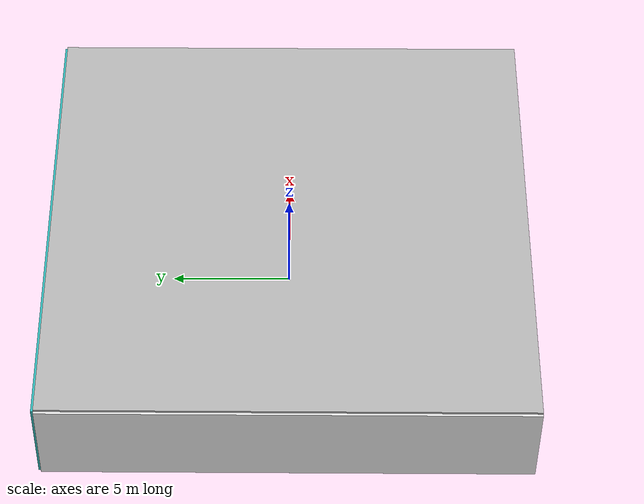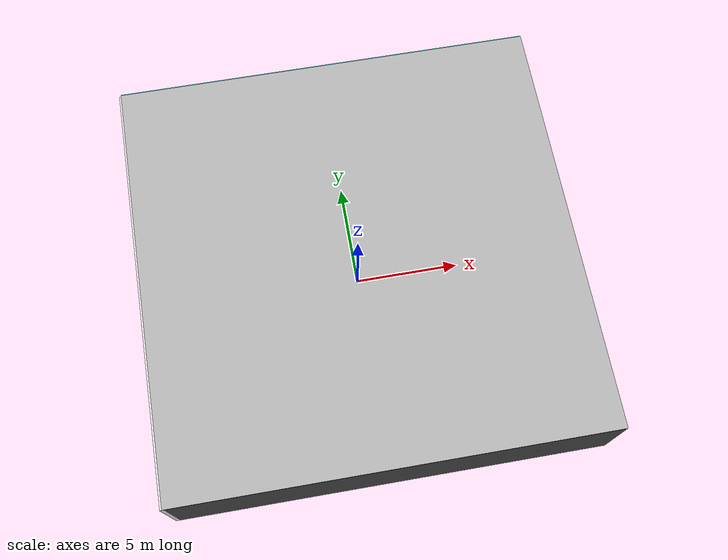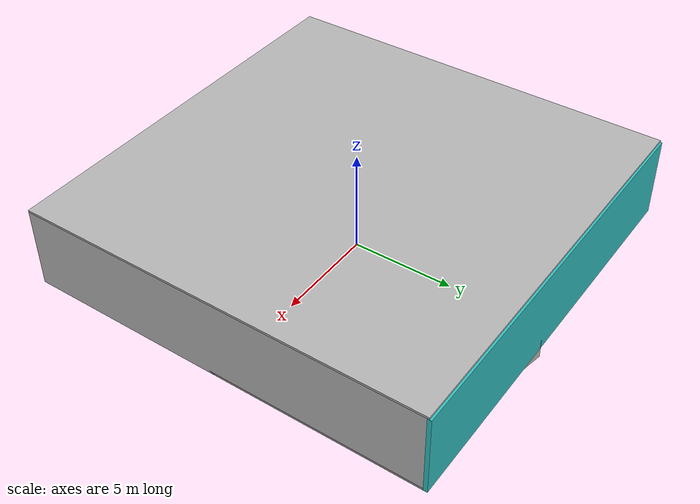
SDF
<sdf version="1.4">
 <world name="default">
  <physics type="ode">
   <max_step_size>0.001</max_step_size>
   <real_time_factor>1</real_time_factor>
   <real_time_update_rate>1000</real_time_update_rate>
   <gravity>0 0 -9.8</gravity>
  </physics>
  <scene><ambient>0.4 0.4 0.4 1</ambient><background>0.7 0.7 0.7 1</background><shadows>1</shadows></scene>
  <model name="Surrounding">
   <static>1</static>
   <link name="Ceiling">
    <collision name="Ceiling_Collision"><geometry><box><size>20 20 0.1</size></box></geometry></collision>
    <visual name="Ceiling_Visual">
     <geometry><box><size>20 20 0.1</size></box></geometry>
     <material>
      <script><uri>file://media/materials/scripts/gazebo.material</uri><name>Gazebo/Pioneer2Body</name></script>
     </material>
    </visual>
    <pose>0 0 4.05 0 0 0</pose>
   </link>
   <link name="Wall_South">
    <collision name="Wall_South_Collision">
     <geometry><box><size>20 0 4</size></box></geometry>
     <pose>0 0 2 0 -0 0</pose>
    </collision>
    <visual name="Wall_South_Visual">
     <pose>0 0 2 0 -0 0</pose>
     <geometry><box><size>20 0 4</size></box></geometry>
     <material>
      <script><uri>file://media/materials/scripts/gazebo.material</uri><name>Gazebo/Road</name></script>
     </material>
    </visual>
    <velocity_decay><linear>0</linear><angular>0</angular></velocity_decay>
    <pose>0 -10 0 0 -0 0</pose>
   </link>
   <link name="Wall_East">
    <collision name="Wall_21_Collision">
     <geometry><box><size>20 0 4</size></box></geometry>
     <pose>0 0 2 0 -0 0</pose>
    </collision>
    <visual name="Wall_21_Visual">
     <pose>0 0 2 0 -0 0</pose>
     <geometry><box><size>20 0 4</size></box></geometry>
     <material>
      <script><uri>file://media/materials/scripts/gazebo.material</uri><name>Gazebo/Pioneer2Body</name></script>
     </material>
    </visual>
    <velocity_decay><linear>0</linear><angular>0</angular></velocity_decay>
    <pose>10 0 0 0 -0 1.5708</pose>
   </link>
   <link name="Wall_North">
    <collision name="Wall_22_Collision">
     <geometry><box><size>20 0.2 4</size></box></geometry>
     <pose>0 0 2 0 -0 0</pose>
    </collision>
    <visual name="Wall_22_Visual">
     <pose>0 0 2 0 -0 0</pose>
     <geometry><box><size>20 0.2 4</size></box></geometry>
     <material>
      <script><uri>file://media/materials/scripts/gazebo.material</uri><name>Gazebo/Turquoise</name></script>
     </material>
    </visual>
    <velocity_decay><linear>0</linear><angular>0</angular></velocity_decay>
    <pose>0 10 0 0 -0 0</pose>
   </link>
   <link name="Wall_West">
    <collision name="Wall_23_Collision">
     <geometry><box><size>20 0.2 4</size></box></geometry>
     <pose>0 0 2 0 -0 0</pose>
    </collision>
    <visual name="Wall_23_Visual">
     <pose>0 0 2 0 -0 0</pose>
     <geometry><box><size>20 0.2 4</size></box></geometry>
     <material>
      <script><uri>file://media/materials/scripts/gazebo.material</uri><name>Gazebo/WhiteGlow</name></script>
     </material>
    </visual>
    <velocity_decay><linear>0</linear><angular>0</angular></velocity_decay>
    <pose>-10 0 0 0 0 -1.5708</pose>
   </link>
   <link name="Ground_link">
    <collision name="collision">
     <pose>0 0 .05 0 -0 0</pose>
     <geometry><box><size>20 20 0.1</size></box></geometry>
    </collision>
    <visual name="visual">
     <pose>0 0 .05 0 -0 0</pose>
     <geometry><box><size>20 20 0.1</size></box></geometry>
     <material>
      <script><uri>file://media/materials/scripts/gazebo.material</uri><name>Gazebo/Grey</name></script>
     </material>
    </visual>
   </link>
   <static>1</static>
  </model>
  <spherical_coordinates>
   <surface_model>EARTH_WGS84</surface_model>
   <latitude_deg>0</latitude_deg>
   <longitude_deg>0</longitude_deg>
   <elevation>0</elevation>
   <heading_deg>0</heading_deg>
  </spherical_coordinates>
  <light name="lightball_0" type="diffuse">
   <diffuse>0.8 0.8 0.8 1</diffuse>
   <specular>0.2 0.2 0.2 1</specular>
   <attenuation>
    <range>100</range>
    <constant>0.7</constant>
    <linear>0.01</linear>
    <quadratic>0.001</quadratic>
   </attenuation>
   <direction>-0.5 0.1 -0.9</direction>
   <pose>4.22511448391 8.55926868154 2.42762666274 0 0 0</pose>
  </light>
  <light name="lightball_1" type="diffuse">
   <diffuse>0.8 0.8 0.8 1</diffuse>
   <specular>0.2 0.2 0.2 1</specular>
   <attenuation>
    <range>100</range>
    <constant>0.7</constant>
    <linear>0.01</linear>
    <quadratic>0.001</quadratic>
   </attenuation>
   <direction>-0.5 0.1 -0.9</direction>
   <pose>9.94753092342 -5.51290059315 2.55335360298 0 0 0</pose>
  </light>
  <light name="lightball_2" type="diffuse">
   <diffuse>0.8 0.8 0.8 1</diffuse>
   <specular>0.2 0.2 0.2 1</specular>
   <attenuation>
    <range>100</range>
    <constant>0.7</constant>
    <linear>0.01</linear>
    <quadratic>0.001</quadratic>
   </attenuation>
   <direction>-0.5 0.1 -0.9</direction>
   <pose>-1.16535531203 2.77185200105 3.64346628298 0 0 0</pose>
  </light>
  <light name="lightball_3" type="diffuse">
   <diffuse>0.8 0.8 0.8 1</diffuse>
   <specular>0.2 0.2 0.2 1</specular>
   <attenuation>
    <range>100</range>
    <constant>0.7</constant>
    <linear>0.01</linear>
    <quadratic>0.001</quadratic>
   </attenuation>
   <direction>-0.5 0.1 -0.9</direction>
   <pose>1.13679593424 7.84565487908 2.61910717188 0 0 0</pose>
  </light>
  <light name="lightball_4" type="diffuse">
   <diffuse>0.8 0.8 0.8 1</diffuse>
   <specular>0.2 0.2 0.2 1</specular>
   <attenuation>
    <range>100</range>
    <constant>0.7</constant>
    <linear>0.01</linear>
    <quadratic>0.001</quadratic>
   </attenuation>
   <direction>-0.5 0.1 -0.9</direction>
   <pose>-1.30066378209 -9.51337207702 3.45439849851 0 0 0</pose>
  </light>
  <light name="lightball_5" type="diffuse">
   <diffuse>0.8 0.8 0.8 1</diffuse>
   <specular>0.2 0.2 0.2 1</specular>
   <attenuation>
    <range>100</range>
    <constant>0.7</constant>
    <linear>0.01</linear>
    <quadratic>0.001</quadratic>
   </attenuation>
   <direction>-0.5 0.1 -0.9</direction>
   <pose>5.08637564801 9.60011267182 3.39333390427 0 0 0</pose>
  </light>
  <light name="lightball_6" type="diffuse">
   <diffuse>0.8 0.8 0.8 1</diffuse>
   <specular>0.2 0.2 0.2 1</specular>
   <attenuation>
    <range>100</range>
    <constant>0.7</constant>
    <linear>0.01</linear>
    <quadratic>0.001</quadratic>
   </attenuation>
   <direction>-0.5 0.1 -0.9</direction>
   <pose>-9.89178058105 -3.02259403519 3.4089567364 0 0 0</pose>
  </light>
  <light name="lightball_7" type="diffuse">
   <diffuse>0.8 0.8 0.8 1</diffuse>
   <specular>0.2 0.2 0.2 1</specular>
   <attenuation>
    <range>100</range>
    <constant>0.7</constant>
    <linear>0.01</linear>
    <quadratic>0.001</quadratic>
   </attenuation>
   <direction>-0.5 0.1 -0.9</direction>
   <pose>-1.131127053 -3.55734281498 1.62406970538 0 0 0</pose>
  </light>
  <light name="lightball_8" type="diffuse">
   <diffuse>0.8 0.8 0.8 1</diffuse>
   <specular>0.2 0.2 0.2 1</specular>
   <attenuation>
    <range>100</range>
    <constant>0.7</constant>
    <linear>0.01</linear>
    <quadratic>0.001</quadratic>
   </attenuation>
   <direction>-0.5 0.1 -0.9</direction>
   <pose>4.96808999384 4.53072186598 2.69979798173 0 0 0</pose>
  </light>
  <light name="lightball_9" type="diffuse">
   <diffuse>0.8 0.8 0.8 1</diffuse>
   <specular>0.2 0.2 0.2 1</specular>
   <attenuation>
    <range>100</range>
    <constant>0.7</constant>
    <linear>0.01</linear>
    <quadratic>0.001</quadratic>
   </attenuation>
   <direction>-0.5 0.1 -0.9</direction>
   <pose>3.79663634749 -8.31382414956 0.834855543376 0 0 0</pose>
  </light>
  <light name="lightball_10" type="diffuse">
   <diffuse>0.8 0.8 0.8 1</diffuse>
   <specular>0.2 0.2 0.2 1</specular>
   <attenuation>
    <range>100</range>
    <constant>0.7</constant>
    <linear>0.01</linear>
    <quadratic>0.001</quadratic>
   </attenuation>
   <direction>-0.5 0.1 -0.9</direction>
   <pose>-1.42628294824 7.03139882139 0.620989388983 0 0 0</pose>
  </light>
  <include><uri>model://cabinet</uri><pose>-5.48659508398 -4.42137532636 0 0 0 0.444681580817</pose></include>
  <include>
   <uri>model://construction_cone</uri>
   <pose>-2.19277264275 -8.29871974776 0 0 0 2.43350179399</pose>
  </include>
  <include>
   <uri>model://textured_shapes</uri>
   <pose>1.19396316058 8.04979726508 0 0 0 2.94919140036</pose>
  </include>
  <include><uri>model://table</uri><pose>5.45663948596 -4.24113741491 0 0 0 2.99525645622</pose></include>
  <include>
   <uri>model://robocup_3Dsim_goal</uri>
   <pose>5.15203409054 6.74588750049 0 0 0 2.29746708482</pose>
  </include>
 </world>
</sdf>

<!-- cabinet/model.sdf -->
<sdf version="1.5">
  <model name="cabinet">
    <static>true</static>
    <link name="cabinet_bottom_plate">
      <inertial>
        <pose>0 0 -1 0 0 0</pose>
        <inertia>
          <ixx>2.050000</ixx>
          <ixy>0</ixy>
          <ixz>0</ixz>
          <iyy>2.050000</iyy>
          <iyz>0</iyz>
          <izz>2.050000</izz>
        </inertia>
        <mass>25.000000</mass>
      </inertial>
      <collision name="cabinet_bottom_plate_geom">
        <pose>0 0 0.010000 0 0 0</pose>
        <geometry>
          <box>
            <size>0.450000 0.450000 0.020000</size>
          </box>
        </geometry>
      </collision>
      <visual name="cabinet_bottom_plate_geom_visual">
        <pose>0 0 0.010000 0 0 0</pose>
        <geometry>
          <box>
            <size>0.450000 0.450000 0.020000</size>
          </box>
        </geometry>
        <material>
          <script>
            <uri>model://media/materials/scripts/gazebo.material</uri>
            <name>Gazebo/Wood</name>
          </script>
        </material>
      </visual>
      <collision name="cabinet_bottom_plate_geom_cabinet_back_plate">
        <pose>0.235000 0 0.510000 0 0 0</pose>
        <geometry>
          <box>
            <size>0.020000 0.450000 1.020000</size>
          </box>
        </geometry>
      </collision>
      <visual name="cabinet_bottom_plate_geom_cabinet_back_plate_visual">
        <pose>0.235000 0 0.510000 0 0 0</pose>
        <geometry>
          <box>
            <size>0.020000 0.450000 1.020000</size>
          </box>
        </geometry>
        <material>
          <script>
            <uri>model://media/materials/scripts/gazebo.material</uri>
            <name>Gazebo/Wood</name>
          </script>
        </material>
      </visual>
      <collision name="cabinet_bottom_plate_geom_cabinet_left_plate">
        <pose>0 0.235000 0.510000 0 0 0</pose>
        <geometry>
          <box>
            <size>0.450000 0.020000 1.020000</size>
          </box>
        </geometry>
      </collision>
      <visual name="cabinet_bottom_plate_geom_cabinet_left_plate_visual">
        <pose>0 0.235000 0.510000 0 0 0</pose>
        <geometry>
          <box>
            <size>0.450000 0.020000 1.020000</size>
          </box>
        </geometry>
        <material>
          <script>
            <uri>model://media/materials/scripts/gazebo.material</uri>
            <name>Gazebo/Wood</name>
          </script>
        </material>
      </visual>
      <collision name="cabinet_bottom_plate_geom_cabinet_middle_plate">
        <pose>0 0 0.510000 0 0 0</pose>
        <geometry>
          <box>
            <size>0.450000 0.450000 0.020000</size>
          </box>
        </geometry>
      </collision>
      <visual name="cabinet_bottom_plate_geom_cabinet_middle_plate_visual">
        <pose>0 0 0.510000 0 0 0</pose>
        <geometry>
          <box>
            <size>0.450000 0.450000 0.020000</size>
          </box>
        </geometry>
        <material>
          <script>
            <uri>model://media/materials/scripts/gazebo.material</uri>
            <name>Gazebo/Wood</name>
          </script>
        </material>
      </visual>
      <collision name="cabinet_bottom_plate_geom_cabinet_right_plate">
        <pose>0 -0.235000 0.510000 0 0 0</pose>
        <geometry>
          <box>
            <size>0.450000 0.020000 1.020000</size>
          </box>
        </geometry>
      </collision>
      <visual name="cabinet_bottom_plate_geom_cabinet_right_plate_visual">
        <pose>0 -0.235000 0.510000 0 0 0</pose>
        <geometry>
          <box>
            <size>0.450000 0.020000 1.020000</size>
          </box>
        </geometry>
        <material>
          <script>
            <uri>model://media/materials/scripts/gazebo.material</uri>
            <name>Gazebo/Wood</name>
          </script>
        </material>
      </visual>
      <collision name="cabinet_bottom_plate_geom_cabinet_top_plate">
        <pose>0 0 1.010000 0 0 0</pose>
        <geometry>
          <box>
            <size>0.450000 0.450000 0.020000</size>
          </box>
        </geometry>
      </collision>
      <visual name="cabinet_bottom_plate_geom_cabinet_top_plate_visual">
        <pose>0 0 1.010000 0 0 0</pose>
        <geometry>
          <box>
            <size>0.450000 0.450000 0.020000</size>
          </box>
        </geometry>
        <material>
          <script>
            <uri>model://media/materials/scripts/gazebo.material</uri>
            <name>Gazebo/Wood</name>
          </script>
        </material>
      </visual>
    </link>
  </model>
</sdf>

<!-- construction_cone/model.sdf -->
<sdf version="1.5">
  <model name="Construction Cone">
    <link name="link">
      <collision name="collision">
        <geometry>
          <mesh>
            <scale>10 10 10</scale>
            <uri>file://isr-testbed/construction_cone/meshes/construction_cone.dae</uri>
          </mesh>
        </geometry>
      </collision>
      <visual name="visual">
        <geometry>
          <mesh>
            <scale>10 10 10</scale>
            <uri>file://isr-testbed/construction_cone/meshes/construction_cone.dae</uri>
          </mesh>
        </geometry>
      </visual>
    </link>
  </model>
</sdf>

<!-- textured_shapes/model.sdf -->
<sdf version="1.6">
  <model name="textured_shapes">
    <pose>0 0 0.5 0 0 0</pose>
    <link name="box">
      <pose>0 -1.5 0 0 0 0</pose>
      <collision name="collision">
        <geometry>
          <box>
            <size>1 1 1</size>
          </box>
        </geometry>
      </collision>
      <visual name="visual">
        <geometry>
          <box>
            <size>1 1 1</size>
          </box>
        </geometry>
        <material>
          <script>
            <uri>model://../model_source/models/textured_shapes/materials/scripts</uri>
            <uri>model://../model_source/models/textured_shapes/materials/textures</uri>
            <name>TexturedShape/Squares</name>
          </script>
        </material>
      </visual>
    </link>
    <link name="sphere">
      <collision name="collision">
        <geometry>
          <sphere>
            <radius>0.5</radius>
          </sphere>
        </geometry>
      </collision>
      <visual name="visual">
        <geometry>
          <sphere>
            <radius>0.5</radius>
          </sphere>
        </geometry>
        <material>
          <script>
            <uri>model://../model_source/models/textured_shapes/materials/scripts</uri>
            <uri>model://../model_source/models/textured_shapes/materials/textures</uri>
            <name>TexturedShape/Squares</name>
          </script>
        </material>
      </visual>
    </link>
    <link name="cylinder">
      <pose>0 1.5 0 0 0 0</pose>
      <collision name="collision">
        <geometry>
          <cylinder>
            <radius>0.5</radius>
            <length>1</length>
          </cylinder>
        </geometry>
      </collision>
      <visual name="visual">
        <geometry>
          <cylinder>
            <radius>0.5</radius>
            <length>1</length>
          </cylinder>
        </geometry>
        <material>
          <script>
            <uri>model://../model_source/models/textured_shapes/materials/scripts</uri>
            <uri>model://../model_source/models/textured_shapes/materials/textures</uri>
            <name>TexturedShape/Squares</name>
          </script>
        </material>
      </visual>
    </link>
  </model>
</sdf>

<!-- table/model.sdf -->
<sdf version="1.5">
  <model name="table">
    <static>true</static>
    <link name="link">
      <collision name="surface">
        <pose>0 0 1.0 0 0 0</pose>
        <geometry>
          <box>
            <size>1.5 0.8 0.03</size>
          </box>
        </geometry>
        <surface>
          <friction>
            <ode>
              <mu>0.6</mu>
              <mu2>0.6</mu2>
            </ode>
          </friction>
        </surface>
      </collision>
      <visual name="visual1">
        <pose>0 0 1.0 0 0 0</pose>
        <geometry>
          <box>
            <size>1.5 0.8 0.03</size>
          </box>
        </geometry>
        <material>
          <script>
            <uri>model://media/materials/scripts/gazebo.material</uri>
            <name>Gazebo/Wood</name>
          </script>
        </material>
      </visual>
      <collision name="front_left_leg">
        <pose>0.68 0.38 0.5 0 0 0</pose>
        <geometry>
          <cylinder>
            <radius>0.02</radius>
            <length>1.0</length>
          </cylinder>
        </geometry>
      </collision>
      <visual name="front_left_leg">
        <pose>0.68 0.38 0.5 0 0 0</pose>
        <geometry>
          <cylinder>
            <radius>0.02</radius>
            <length>1.0</length>
          </cylinder>
        </geometry>
        <material>
          <script>
            <uri>model://media/materials/scripts/gazebo.material</uri>
            <name>Gazebo/Grey</name>
          </script>
        </material>
      </visual>
      <collision name="front_right_leg">
        <pose>0.68 -0.38 0.5 0 0 0</pose>
        <geometry>
          <cylinder>
            <radius>0.02</radius>
            <length>1.0</length>
          </cylinder>
        </geometry>
      </collision>
      <visual name="front_right_leg">
        <pose>0.68 -0.38 0.5 0 0 0</pose>
        <geometry>
          <cylinder>
            <radius>0.02</radius>
            <length>1.0</length>
          </cylinder>
        </geometry>
        <material>
          <script>
            <uri>model://media/materials/scripts/gazebo.material</uri>
            <name>Gazebo/Grey</name>
          </script>
        </material>
      </visual>
      <collision name="back_right_leg">
        <pose>-0.68 -0.38 0.5 0 0 0</pose>
        <geometry>
          <cylinder>
            <radius>0.02</radius>
            <length>1.0</length>
          </cylinder>
        </geometry>
      </collision>
      <visual name="back_right_leg">
        <pose>-0.68 -0.38 0.5 0 0 0</pose>
        <geometry>
          <cylinder>
            <radius>0.02</radius>
            <length>1.0</length>
          </cylinder>
        </geometry>
        <material>
          <script>
            <uri>model://media/materials/scripts/gazebo.material</uri>
            <name>Gazebo/Grey</name>
          </script>
        </material>
      </visual>
      <collision name="back_left_leg">
        <pose>-0.68 0.38 0.5 0 0 0</pose>
        <geometry>
          <cylinder>
            <radius>0.02</radius>
            <length>1.0</length>
          </cylinder>
        </geometry>
      </collision>
      <visual name="back_left_leg">
        <pose>-0.68 0.38 0.5 0 0 0</pose>
        <geometry>
          <cylinder>
            <radius>0.02</radius>
            <length>1.0</length>
          </cylinder>
        </geometry>
        <material>
          <script>
            <uri>model://media/materials/scripts/gazebo.material</uri>
            <name>Gazebo/Grey</name>
          </script>
        </material>
      </visual>
    </link>
  </model>
</sdf>

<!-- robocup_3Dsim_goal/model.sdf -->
<sdf version="1.5">
  <model name="robocup_3d_goal">
    <static>true</static>
    <link name="left_post">
      <pose>0 1.05 0.45 0 0 0</pose>
      <collision name="collision">
        <geometry>
          <cylinder>
            <radius>0.05</radius>
            <length>0.9</length>
          </cylinder>
        </geometry>
      </collision>
      <visual name="visual">
        <geometry>
          <cylinder>
            <radius>0.05</radius>
            <length>0.9</length>
          </cylinder>
        </geometry>
        <material>
          <script>
            <uri>file://media/materials/scripts/gazebo.material</uri>
            <name>Gazebo/ZincYellow</name>
          </script>
        </material>
      </visual>
    </link>
    <link name="left_support_horiz_lower">
      <pose>0.30 1.05 0.01 0 0 0</pose>
      <collision name="collision">
        <geometry>
          <box>
            <size>0.50 0.02 0.02</size>
          </box>
        </geometry>
      </collision>
      <visual name="visual">
        <geometry>
          <box>
            <size>0.50 0.02 0.02</size>
          </box>
        </geometry>
        <material>
          <script>
            <uri>file://media/materials/scripts/gazebo.material</uri>
            <name>Gazebo/White</name>
          </script>
        </material>
      </visual>
    </link>
    <link name="left_support_horiz_upper">
      <pose>0.30 1.05 0.79 0 0 0</pose>
      <collision name="collision">
        <geometry>
          <box>
            <size>0.50 0.02 0.02</size>
          </box>
        </geometry>
      </collision>
      <visual name="visual">
        <geometry>
          <box>
            <size>0.50 0.02 0.02</size>
          </box>
        </geometry>
        <material>
          <script>
            <uri>file://media/materials/scripts/gazebo.material</uri>
            <name>Gazebo/White</name>
          </script>
        </material>
      </visual>
    </link>
    <link name="left_support_vertical">
      <pose>0.56 1.05 0.4 0 1.5708 0</pose>
      <collision name="collision">
        <geometry>
          <box>
            <size>0.80 0.02 0.02</size>
          </box>
        </geometry>
      </collision>
      <visual name="visual">
        <geometry>
          <box>
            <size>0.80 0.02 0.02</size>
          </box>
        </geometry>
        <material>
          <script>
            <uri>file://media/materials/scripts/gazebo.material</uri>
            <name>Gazebo/White</name>
          </script>
        </material>
      </visual>
    </link>
    <link name="right_support_horiz_lower">
      <pose>0.30 -1.05 0.01 0 0 0</pose>
      <collision name="collision">
        <geometry>
          <box>
            <size>0.50 0.02 0.02</size>
          </box>
        </geometry>
      </collision>
      <visual name="visual">
        <geometry>
          <box>
            <size>0.50 0.02 0.02</size>
          </box>
        </geometry>
        <material>
          <script>
            <uri>file://media/materials/scripts/gazebo.material</uri>
            <name>Gazebo/White</name>
          </script>
        </material>
      </visual>
    </link>
    <link name="right_support_horiz_upper">
      <pose>0.30 -1.05 0.79 0 0 0</pose>
      <collision name="collision">
        <geometry>
          <box>
            <size>0.50 0.02 0.02</size>
          </box>
        </geometry>
      </collision>
      <visual name="visual">
        <geometry>
          <box>
            <size>0.50 0.02 0.02</size>
          </box>
        </geometry>
        <material>
          <script>
            <uri>file://media/materials/scripts/gazebo.material</uri>
            <name>Gazebo/White</name>
          </script>
        </material>
      </visual>
    </link>
    <link name="right_support_vertical">
      <pose>0.56 -1.05 0.4 0 1.5708 0</pose>
      <collision name="collision">
        <geometry>
          <box>
            <size>0.80 0.02 0.02</size>
          </box>
        </geometry>
      </collision>
      <visual name="visual">
        <geometry>
          <box>
            <size>0.80 0.02 0.02</size>
          </box>
        </geometry>
        <material>
          <script>
            <uri>file://media/materials/scripts/gazebo.material</uri>
            <name>Gazebo/White</name>
          </script>
        </material>
      </visual>
    </link>
    <link name="center_support_horiz_lower">
      <pose>0.56 0 0.01 0 1.5708 0</pose>
      <collision name="collision">
        <geometry>
          <box>
            <size>0.02 2.08 0.02</size>
          </box>
        </geometry>
      </collision>
      <visual name="visual">
        <geometry>
          <box>
            <size>0.02 2.08 0.02</size>
          </box>
        </geometry>
        <material>
          <script>
            <uri>file://media/materials/scripts/gazebo.material</uri>
            <name>Gazebo/White</name>
          </script>
        </material>
      </visual>
    </link>
    <link name="center_support_horiz_upper">
      <pose>0.56 0 0.79 0 1.5708 0</pose>
      <collision name="collision">
        <geometry>
          <box>
            <size>0.02 2.08 0.02</size>
          </box>
        </geometry>
      </collision>
      <visual name="visual">
        <geometry>
          <box>
            <size>0.02 2.08 0.02</size>
          </box>
        </geometry>
        <material>
          <script>
            <uri>file://media/materials/scripts/gazebo.material</uri>
            <name>Gazebo/White</name>
          </script>
        </material>
      </visual>
    </link>
    <link name="right_post">
      <pose>0 -1.05 0.45 0 0 0</pose>
      <collision name="collision">
        <geometry>
          <cylinder>
            <radius>0.05</radius>
            <length>0.9</length>
          </cylinder>
        </geometry>
      </collision>
      <visual name="visual">
        <geometry>
          <cylinder>
            <radius>0.05</radius>
            <length>0.9</length>
          </cylinder>
        </geometry>
        <material>
          <script>
            <uri>file://media/materials/scripts/gazebo.material</uri>
            <name>Gazebo/ZincYellow</name>
          </script>
        </material>
      </visual>
    </link>
    <link name="crossbar">
      <pose>0 0 0.85 1.57 1.57 0</pose>
      <collision name="collision">
        <geometry>
          <cylinder>
            <radius>0.05</radius>
            <length>2.0</length>
          </cylinder>
        </geometry>
      </collision>
      <visual name="visual">
        <geometry>
          <cylinder>
            <radius>0.05</radius>
            <length>2.0</length>
          </cylinder>
        </geometry>
        <material>
          <script>
            <uri>file://media/materials/scripts/gazebo.material</uri>
            <name>Gazebo/ZincYellow</name>
          </script>
        </material>
      </visual>
    </link>
    <link name="center_net">
      <pose>0.56 0 0.40 0 0 0</pose>
      <collision name="collision">
        <geometry>
          <box>
            <size>0.01 2.1 0.80</size>
          </box>
        </geometry>
      </collision>
      <visual name="visual">
        <geometry>
          <box>
            <size>0.01 2.1 0.80</size>
          </box>
        </geometry>
        <material>
          <script>
            <uri>model://../model_source/models/robocup09_spl_field/materials/scripts/</uri>
            <uri>model://../model_source/models/robocup09_spl_field/materials/textures/</uri>
            <name>RoboCup/Net</name>
          </script>
        </material>
      </visual>
    </link>
    <link name="left_net">
      <pose>0.30 1.05 0.40 0 0 0</pose>
      <collision name="collision">
        <geometry>
          <box>
            <size>0.50 0.01 0.76</size>
          </box>
        </geometry>
      </collision>
      <visual name="visual">
        <geometry>
          <box>
            <size>0.50 0.01 0.76</size>
          </box>
        </geometry>
        <material>
          <script>
            <uri>model://../model_source/models/robocup09_spl_field/materials/scripts/</uri>
            <uri>model://../model_source/models/robocup09_spl_field/materials/textures/</uri>
            <name>RoboCup/Net</name>
          </script>
        </material>
      </visual>
    </link>
    <link name="right_net">
      <pose>0.30 -1.05 0.40 0 0 0</pose>
      <collision name="collision">
        <geometry>
          <box>
            <size>0.50 0.01 0.76</size>
          </box>
        </geometry>
      </collision>
      <visual name="visual">
        <geometry>
          <box>
            <size>0.50 0.01 0.76</size>
          </box>
        </geometry>
        <material>
          <script>
            <uri>model://../model_source/models/robocup09_spl_field/materials/scripts/</uri>
            <uri>model://../model_source/models/robocup09_spl_field/materials/textures/</uri>
            <name>RoboCup/Net</name>
          </script>
        </material>
      </visual>
    </link>
  </model>
</sdf>
